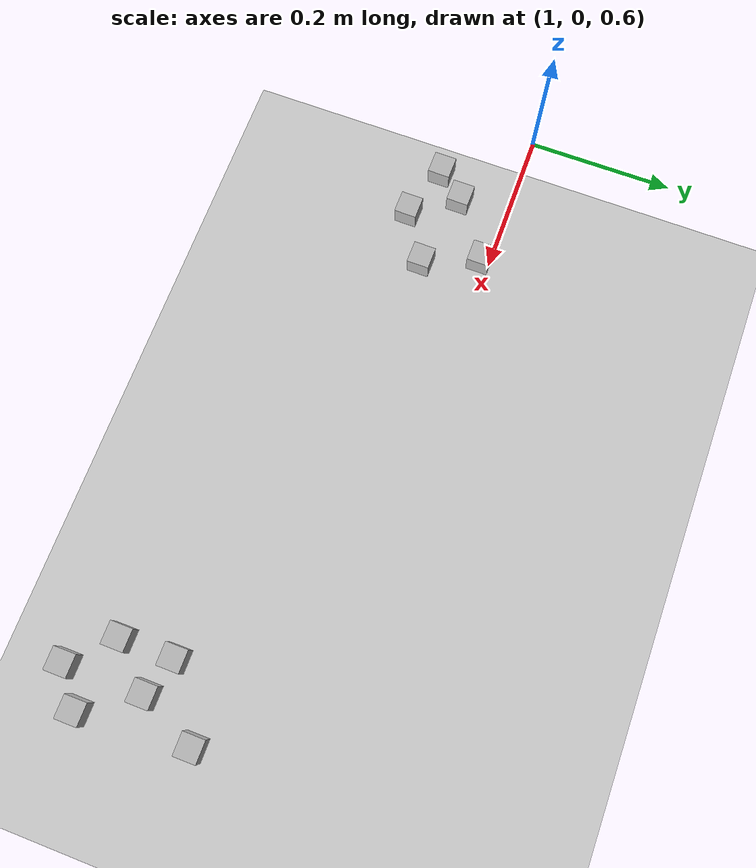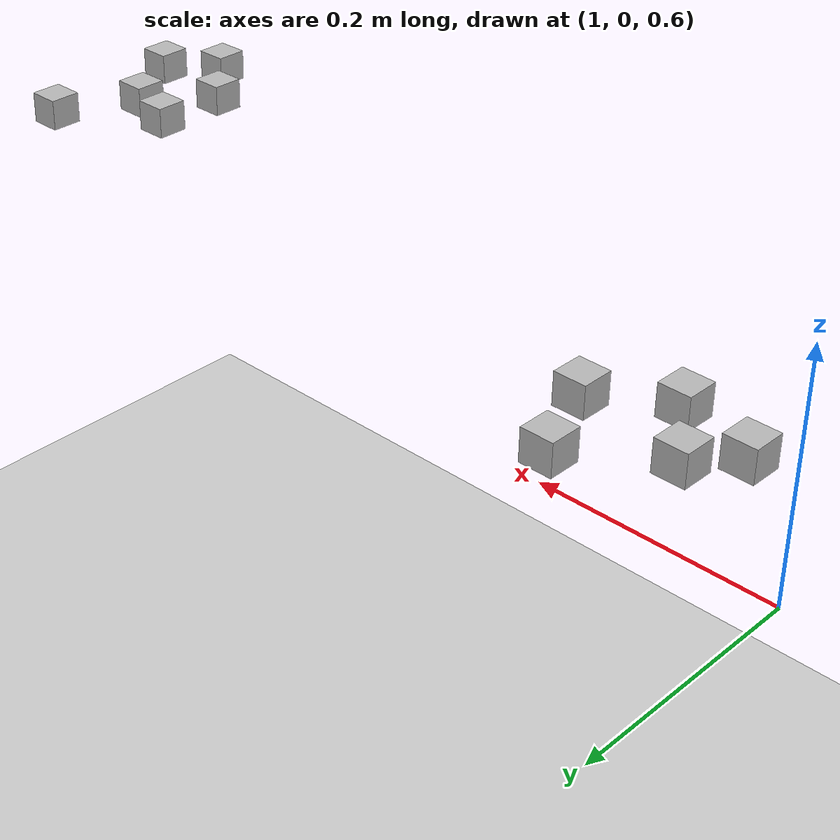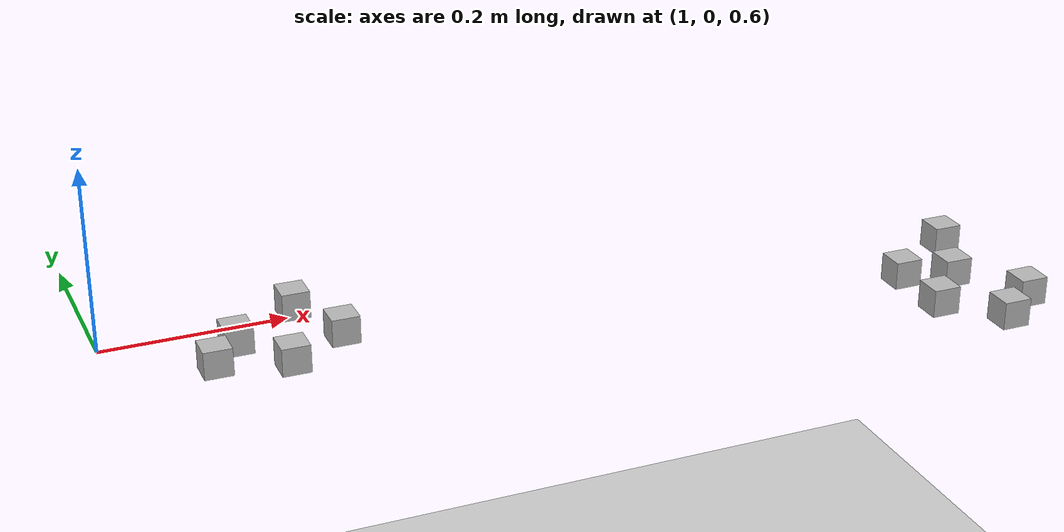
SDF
<sdf version="1.7">
 <world name="default">
  <model name="ground_plane">
   <static>1</static>
   <link name="link">
    <collision name="collision">
     <geometry><plane><normal>0 0 1</normal><size>100 100</size></plane></geometry>
     <surface><friction><ode><mu>100</mu><mu2>50</mu2></ode></friction></surface>
    </collision>
    <visual name="visual">
     <cast_shadows>0</cast_shadows>
     <geometry><plane><normal>0 0 1</normal><size>100 100</size></plane></geometry>
     <material>
      <script><uri>file://media/materials/scripts/gazebo.material</uri><name>Gazebo/Grey</name></script>
     </material>
    </visual>
   </link>
  </model>
  <model name="menagers_commerciale_bouteille_jus">
   <static>0</static>
   <link name="link">
    <inertial>
     <mass>0.00893</mass>
     <inertia>
      <ixx>4.47e-06</ixx>
      <iyy>4.47e-06</iyy>
      <izz>4.47e-06</izz>
      <ixy>0</ixy>
      <ixz>0</ixz>
      <iyz>0</iyz>
     </inertia>
    </inertial>
    <visual name="cube_visual">
     <geometry><box><size>0.03 0.03 0.03</size></box></geometry>
     <material>
      <script>
       <uri>model://menagers_commerciale_bouteille_jus/materials/scripts/</uri>
       <uri>model://menagers_commerciale_bouteille_jus/materials/textures/</uri>
       <name>menagers_commerciale_bouteille_jus/FaceMaterial</name>
      </script>
     </material>
    </visual>
    <collision name="collision"><geometry><box><size>0.03 0.03 0.03</size></box></geometry></collision>
   </link>
   <pose>1.87732 -0.313326 0.625 -0 -0 -0.002421</pose>
  </model>
  <model name="menagers_industrielle_bidon_huile_moteur">
   <static>0</static>
   <link name="link">
    <inertial>
     <mass>0.00893</mass>
     <inertia>
      <ixx>4.47e-06</ixx>
      <iyy>4.47e-06</iyy>
      <izz>4.47e-06</izz>
      <ixy>0</ixy>
      <ixz>0</ixz>
      <iyz>0</iyz>
     </inertia>
    </inertial>
    <visual name="cube_visual">
     <geometry><box><size>0.03 0.03 0.03</size></box></geometry>
     <material>
      <script>
       <uri>model://menagers_industrielle_bidon_huile_moteur/materials/scripts/</uri>
       <uri>model://menagers_industrielle_bidon_huile_moteur/materials/textures/</uri>
       <name>menagers_industrielle_bidon_huile_moteur/FaceMaterial</name>
      </script>
     </material>
    </visual>
    <collision name="collision"><geometry><box><size>0.03 0.03 0.03</size></box></geometry></collision>
   </link>
   <pose>1.92313 -0.277239 0.625 0 -0 -0.00668</pose>
  </model>
  <model name="menagers_industrielle_big_bag_vide">
   <static>0</static>
   <link name="link">
    <inertial>
     <mass>0.00893</mass>
     <inertia>
      <ixx>4.47e-06</ixx>
      <iyy>4.47e-06</iyy>
      <izz>4.47e-06</izz>
      <ixy>0</ixy>
      <ixz>0</ixz>
      <iyz>0</iyz>
     </inertia>
    </inertial>
    <visual name="cube_visual">
     <geometry><box><size>0.03 0.03 0.03</size></box></geometry>
     <material>
      <script>
       <uri>model://menagers_industrielle_big_bag_vide/materials/scripts/</uri>
       <uri>model://menagers_industrielle_big_bag_vide/materials/textures/</uri>
       <name>menagers_industrielle_big_bag_vide/FaceMaterial</name>
      </script>
     </material>
    </visual>
    <collision name="collision"><geometry><box><size>0.03 0.03 0.03</size></box></geometry></collision>
   </link>
   <pose>1.87718 -0.206616 0.625 0 -0 -0.00668</pose>
  </model>
  <model name="menagers_residentielle_bouteille_huile">
   <static>0</static>
   <link name="link">
    <inertial>
     <mass>0.00893</mass>
     <inertia>
      <ixx>4.47e-06</ixx>
      <iyy>4.47e-06</iyy>
      <izz>4.47e-06</izz>
      <ixy>0</ixy>
      <ixz>0</ixz>
      <iyz>0</iyz>
     </inertia>
    </inertial>
    <visual name="cube_visual">
     <geometry><box><size>0.03 0.03 0.03</size></box></geometry>
     <material>
      <script>
       <uri>model://menagers_residentielle_bouteille_huile/materials/scripts/</uri>
       <uri>model://menagers_residentielle_bouteille_huile/materials/textures/</uri>
       <name>menagers_residentielle_bouteille_huile/FaceMaterial</name>
      </script>
     </material>
    </visual>
    <collision name="collision"><geometry><box><size>0.03 0.03 0.03</size></box></geometry></collision>
   </link>
   <pose>1.91332 -0.129687 0.624991 1.8e-05 0 -0.004042</pose>
  </model>
  <model name="recyclables_commerciale_bouteille_verre_biere">
   <static>0</static>
   <link name="link">
    <inertial>
     <mass>0.00893</mass>
     <inertia>
      <ixx>4.47e-06</ixx>
      <iyy>4.47e-06</iyy>
      <izz>4.47e-06</izz>
      <ixy>0</ixy>
      <ixz>0</ixz>
      <iyz>0</iyz>
     </inertia>
    </inertial>
    <visual name="cube_visual">
     <geometry><box><size>0.03 0.03 0.03</size></box></geometry>
     <material>
      <script>
       <uri>model://recyclables_commerciale_bouteille_verre_biere/materials/scripts/</uri>
       <uri>model://recyclables_commerciale_bouteille_verre_biere/materials/textures/</uri>
       <name>recyclables_commerciale_bouteille_verre_biere/FaceMaterial</name>
      </script>
     </material>
    </visual>
    <collision name="collision"><geometry><box><size>0.03 0.03 0.03</size></box></geometry></collision>
   </link>
   <pose>1.8262 -0.189412 0.624991 -0 7.7e-05 -0.002275</pose>
  </model>
  <model name="recyclables_industrielle_bronze_industriel">
   <static>0</static>
   <link name="link">
    <inertial>
     <mass>0.00893</mass>
     <inertia>
      <ixx>4.47e-06</ixx>
      <iyy>4.47e-06</iyy>
      <izz>4.47e-06</izz>
      <ixy>0</ixy>
      <ixz>0</ixz>
      <iyz>0</iyz>
     </inertia>
    </inertial>
    <visual name="cube_visual">
     <geometry><box><size>0.03 0.03 0.03</size></box></geometry>
     <material>
      <script>
       <uri>model://recyclables_industrielle_bronze_industriel/materials/scripts/</uri>
       <uri>model://recyclables_industrielle_bronze_industriel/materials/textures/</uri>
       <name>recyclables_industrielle_bronze_industriel/FaceMaterial</name>
      </script>
     </material>
    </visual>
    <collision name="collision"><geometry><box><size>0.03 0.03 0.03</size></box></geometry></collision>
   </link>
   <pose>1.82664 -0.261894 0.625 -0 -0 -0.008562</pose>
  </model>
  <model name="recyclables_industrielle_plastique_PP_industriel">
   <static>0</static>
   <link name="link">
    <inertial>
     <mass>0.00893</mass>
     <inertia>
      <ixx>4.47e-06</ixx>
      <iyy>4.47e-06</iyy>
      <izz>4.47e-06</izz>
      <ixy>0</ixy>
      <ixz>0</ixz>
      <iyz>0</iyz>
     </inertia>
    </inertial>
    <visual name="cube_visual">
     <geometry><box><size>0.03 0.03 0.03</size></box></geometry>
     <material>
      <script>
       <uri>model://recyclables_industrielle_plastique_PP_industriel/materials/scripts/</uri>
       <uri>model://recyclables_industrielle_plastique_PP_industriel/materials/textures/</uri>
       <name>recyclables_industrielle_plastique_PP_industriel/FaceMaterial</name>
      </script>
     </material>
    </visual>
    <collision name="collision"><geometry><box><size>0.03 0.03 0.03</size></box></geometry></collision>
   </link>
   <pose>1.09667 -0.105132 0.624997 0.000123 -1e-06 -0.010954</pose>
  </model>
  <model name="recyclables_residentielle_livre_papier">
   <static>0</static>
   <link name="link">
    <inertial>
     <mass>0.00893</mass>
     <inertia>
      <ixx>4.47e-06</ixx>
      <iyy>4.47e-06</iyy>
      <izz>4.47e-06</izz>
      <ixy>0</ixy>
      <ixz>0</ixz>
      <iyz>0</iyz>
     </inertia>
    </inertial>
    <visual name="cube_visual">
     <geometry><box><size>0.03 0.03 0.03</size></box></geometry>
     <material>
      <script>
       <uri>model://recyclables_residentielle_livre_papier/materials/scripts/</uri>
       <uri>model://recyclables_residentielle_livre_papier/materials/textures/</uri>
       <name>recyclables_residentielle_livre_papier/FaceMaterial</name>
      </script>
     </material>
    </visual>
    <collision name="collision"><geometry><box><size>0.03 0.03 0.03</size></box></geometry></collision>
   </link>
   <pose>1.12784 -0.067409 0.624997 0.000123 -1e-06 -0.009848</pose>
  </model>
  <model name="dangereux_commerciale_huile_hydraulique">
   <static>0</static>
   <link name="link">
    <inertial>
     <mass>0.00893</mass>
     <inertia>
      <ixx>4.47e-06</ixx>
      <iyy>4.47e-06</iyy>
      <izz>4.47e-06</izz>
      <ixy>0</ixy>
      <ixz>0</ixz>
      <iyz>0</iyz>
     </inertia>
    </inertial>
    <visual name="cube_visual">
     <geometry><box><size>0.03 0.03 0.03</size></box></geometry>
     <material>
      <script>
       <uri>model://dangereux_commerciale_huile_hydraulique/materials/scripts/</uri>
       <uri>model://dangereux_commerciale_huile_hydraulique/materials/textures/</uri>
       <name>dangereux_commerciale_huile_hydraulique/FaceMaterial</name>
      </script>
     </material>
    </visual>
    <collision name="collision"><geometry><box><size>0.03 0.03 0.03</size></box></geometry></collision>
   </link>
   <pose>1.23282 -0.086615 0.625 0 0 -0.005904</pose>
  </model>
  <model name="dangereux_industrielle_pcb_transformateur">
   <static>0</static>
   <link name="link">
    <inertial>
     <mass>0.00893</mass>
     <inertia>
      <ixx>4.47e-06</ixx>
      <iyy>4.47e-06</iyy>
      <izz>4.47e-06</izz>
      <ixy>0</ixy>
      <ixz>0</ixz>
      <iyz>0</iyz>
     </inertia>
    </inertial>
    <visual name="cube_visual">
     <geometry><box><size>0.03 0.03 0.03</size></box></geometry>
     <material>
      <script>
       <uri>model://dangereux_industrielle_pcb_transformateur/materials/scripts/</uri>
       <uri>model://dangereux_industrielle_pcb_transformateur/materials/textures/</uri>
       <name>dangereux_industrielle_pcb_transformateur/FaceMaterial</name>
      </script>
     </material>
    </visual>
    <collision name="collision"><geometry><box><size>0.03 0.03 0.03</size></box></geometry></collision>
   </link>
   <pose>1.16898 -0.127725 0.624993 -0.000125 2e-06 -0.01152</pose>
  </model>
  <model name="dangereux_residentielle_pile_alcaline">
   <static>0</static>
   <link name="link">
    <inertial>
     <mass>0.00893</mass>
     <inertia>
      <ixx>4.47e-06</ixx>
      <iyy>4.47e-06</iyy>
      <izz>4.47e-06</izz>
      <ixy>0</ixy>
      <ixz>0</ixz>
      <iyz>0</iyz>
     </inertia>
    </inertial>
    <visual name="cube_visual">
     <geometry><box><size>0.03 0.03 0.03</size></box></geometry>
     <material>
      <script>
       <uri>model://dangereux_residentielle_pile_alcaline/materials/scripts/</uri>
       <uri>model://dangereux_residentielle_pile_alcaline/materials/textures/</uri>
       <name>dangereux_residentielle_pile_alcaline/FaceMaterial</name>
      </script>
     </material>
    </visual>
    <collision name="collision"><geometry><box><size>0.03 0.03 0.03</size></box></geometry></collision>
   </link>
   <pose>1.20264 -0.012493 0.624997 3.5e-05 -0 -0.005637</pose>
  </model>
 </world>
</sdf>
